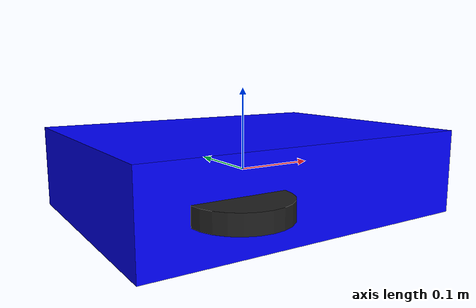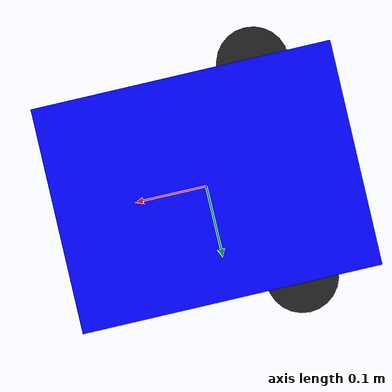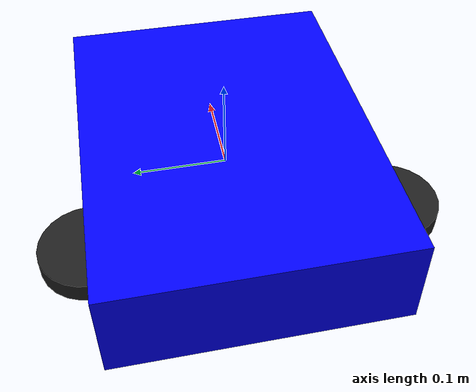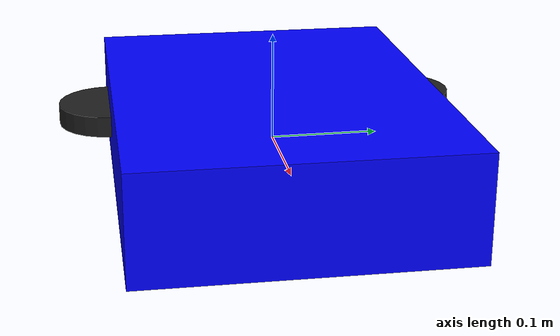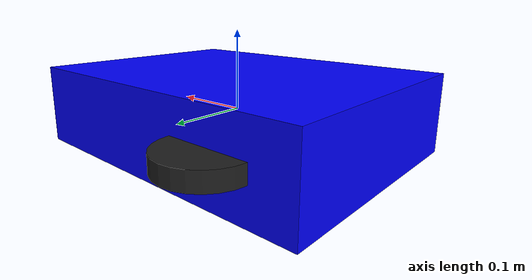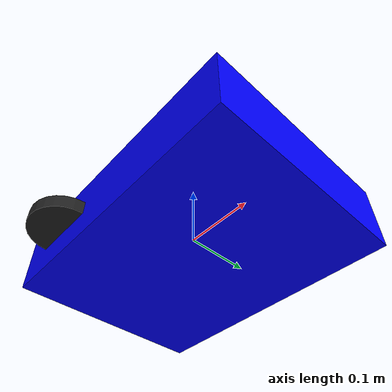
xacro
<?xml version="1.0"?>
<robot xmlns:xacro="http://www.ros.org/wiki/xacro" name="simple_robot">

  <!-- Base link -->
  <link name="base_link">
    <visual>
      <geometry>
        <box size="0.4 0.3 0.1"/>
      </geometry>
      <material name="blue">
        <color rgba="0 0 1 1"/>
      </material>
    </visual>
    <collision>
      <geometry>
        <box size="0.4 0.3 0.1"/>
      </geometry>
    </collision>
    <inertial>
      <mass value="2.0"/>
      <inertia ixx="0.01" ixy="0.0" ixz="0.0" iyy="0.01" iyz="0.0" izz="0.01"/>
    </inertial>
  </link>

  <!-- Left wheel -->
  <link name="left_wheel_link">
    <visual>
      <geometry>
        <cylinder radius="0.05" length="0.02"/>
      </geometry>
      <material name="black"/>
    </visual>
  </link>

  <!-- Right wheel -->
  <link name="right_wheel_link">
    <visual>
      <geometry>
        <cylinder radius="0.05" length="0.02"/>
      </geometry>
      <material name="black"/>
    </visual>
  </link>

  <!-- Joints -->
  <joint name="left_wheel_joint" type="continuous">
    <parent link="base_link"/>
    <child link="left_wheel_link"/>
    <origin xyz="-0.1 0.15 0" rpy="0 0 0"/>
    <axis xyz="0 1 0"/>
  </joint>

  <joint name="right_wheel_joint" type="continuous">
    <parent link="base_link"/>
    <child link="right_wheel_link"/>
    <origin xyz="-0.1 -0.15 0" rpy="0 0 0"/>
    <axis xyz="0 1 0"/>
  </joint>

</robot>
